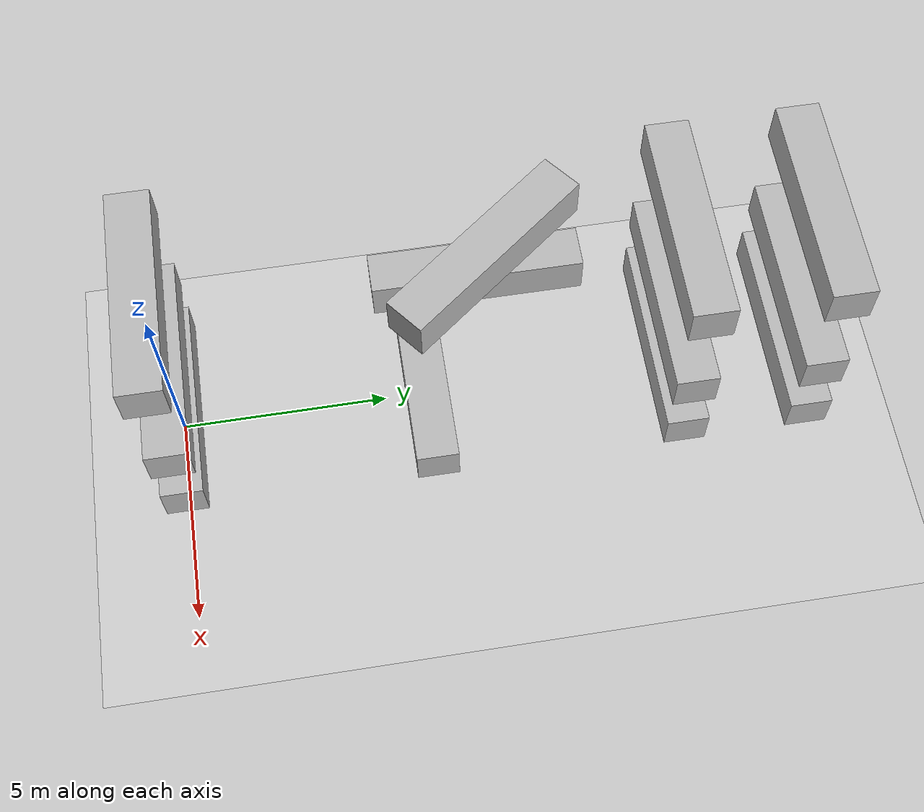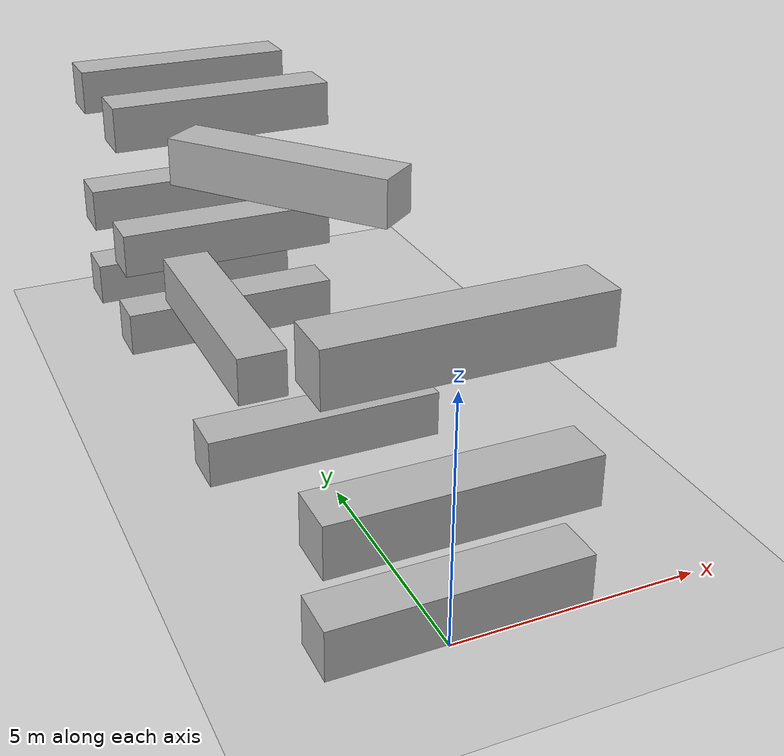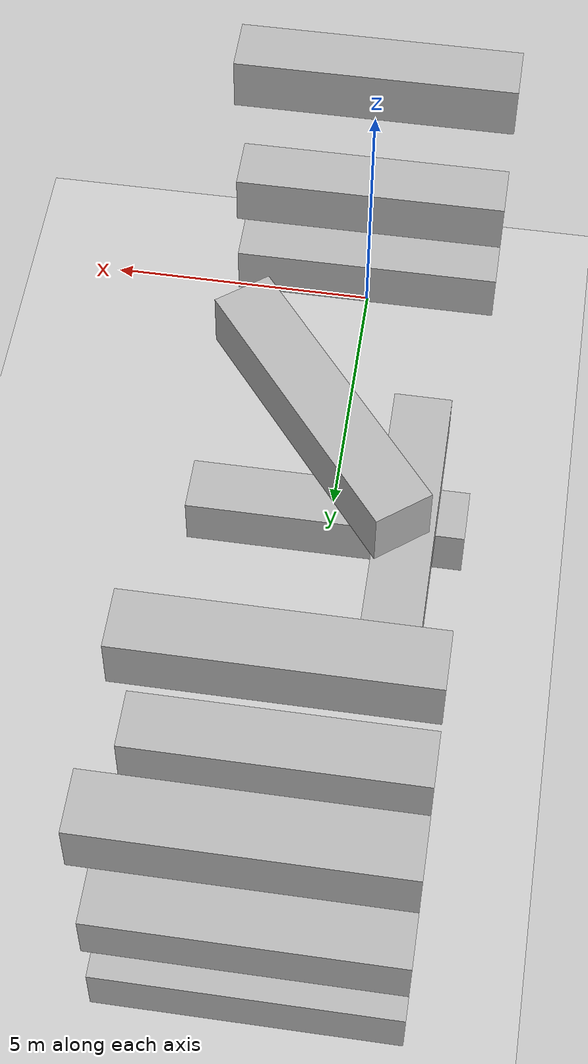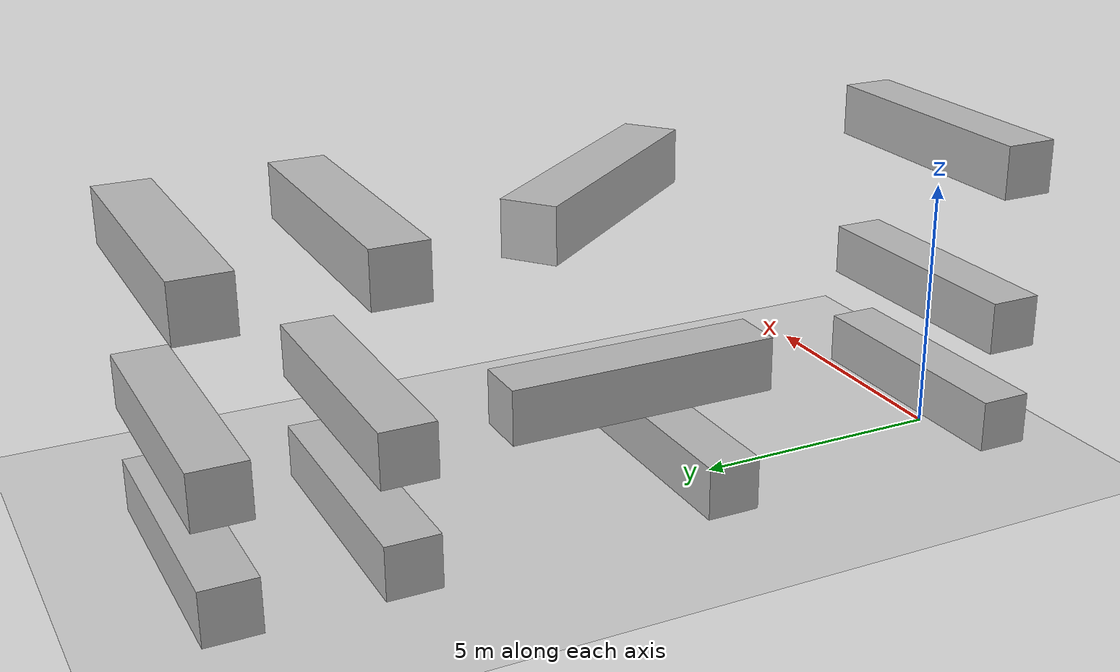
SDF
<?xml version="1.0" ?>
<sdf version="1.5">
  <world name="default">
    <include>
      <uri>model://ground_plane</uri>
    </include>
    <include>
      <uri>model://sun</uri>
    </include>

    <model name="all_collide">
      <self_collide>true</self_collide>
      <link name="link">
        <pose>0 0 1.0 0 0 0</pose>
        <inertial>
          <mass>1</mass>
          <inertia>
            <ixx>0.166667</ixx>
            <ixy>0</ixy>
            <ixz>0</ixz>
            <iyy>2.166667</iyy>
            <iyz>0</iyz>
            <izz>2.166667</izz>
          </inertia>
        </inertial>
        <collision name="collision">
          <geometry>
            <box>
              <size>5 1 1</size>
            </box>
          </geometry>
        </collision>
        <visual name="visual">
          <geometry>
            <box>
              <size>5 1 1</size>
            </box>
          </geometry>
        </visual>
      </link>

      <link name="link1">
        <pose>0 0 3.0 0 0 0</pose>
        <inertial>
          <mass>1</mass>
          <inertia>
            <ixx>0.166667</ixx>
            <ixy>0</ixy>
            <ixz>0</ixz>
            <iyy>2.166667</iyy>
            <iyz>0</iyz>
            <izz>2.166667</izz>
          </inertia>
        </inertial>
        <collision name="collision">
          <geometry>
            <box>
              <size>5 1 1</size>
            </box>
          </geometry>
        </collision>
        <visual name="visual">
          <geometry>
            <box>
              <size>5 1 1</size>
            </box>
          </geometry>
        </visual>
      </link>

      <link name="link2">
        <pose>0 0 6.0 0 0 0</pose>
        <inertial>
          <mass>1</mass>
          <inertia>
            <ixx>0.166667</ixx>
            <ixy>0</ixy>
            <ixz>0</ixz>
            <iyy>2.166667</iyy>
            <iyz>0</iyz>
            <izz>2.166667</izz>
          </inertia>
        </inertial>
        <collision name="collision">
          <geometry>
            <box>
              <size>5 1 1</size>
            </box>
          </geometry>
        </collision>
        <visual name="visual">
          <geometry>
            <box>
              <size>5 1 1</size>
            </box>
          </geometry>
        </visual>
      </link>
    </model>

    <!-- Demonstrate that link self_collide overrides model self_collide-->
    <model name="some_collide">
      <pose>0 6 0 0 0 0</pose>
      <self_collide>true</self_collide>
      <link name="link">
        <self_collide>false</self_collide>
        <pose>0 0 1.0 0 0 0</pose>
        <inertial>
          <mass>1</mass>
          <inertia>
            <ixx>0.166667</ixx>
            <ixy>0</ixy>
            <ixz>0</ixz>
            <iyy>2.166667</iyy>
            <iyz>0</iyz>
            <izz>2.166667</izz>
          </inertia>
        </inertial>
        <collision name="collision">
          <geometry>
            <box>
              <size>5 1 1</size>
            </box>
          </geometry>
        </collision>
        <visual name="visual">
          <geometry>
            <box>
              <size>5 1 1</size>
            </box>
          </geometry>
        </visual>
      </link>

      <link name="link1">
        <pose>-1.5 1.5 3.0 0 0 1.57</pose>
        <self_collide>false</self_collide>
        <inertial>
          <mass>1</mass>
          <inertia>
            <ixx>0.166667</ixx>
            <ixy>0</ixy>
            <ixz>0</ixz>
            <iyy>2.166667</iyy>
            <iyz>0</iyz>
            <izz>2.166667</izz>
          </inertia>
        </inertial>
        <collision name="collision">
          <geometry>
            <box>
              <size>5 1 1</size>
            </box>
          </geometry>
        </collision>
        <visual name="visual">
          <geometry>
            <box>
              <size>5 1 1</size>
            </box>
          </geometry>
        </visual>
      </link>

      <link name="link2">
        <pose>0 1.5 6.0 0 0 2.24</pose>
        <inertial>
          <mass>1</mass>
          <inertia>
            <ixx>0.166667</ixx>
            <ixy>0</ixy>
            <ixz>0</ixz>
            <iyy>2.166667</iyy>
            <iyz>0</iyz>
            <izz>2.166667</izz>
          </inertia>
        </inertial>
        <collision name="collision">
          <geometry>
            <box>
              <size>5 1 1</size>
            </box>
          </geometry>
        </collision>
        <visual name="visual">
          <geometry>
            <box>
              <size>5 1 1</size>
            </box>
          </geometry>
        </visual>
      </link>
    </model>

    <!-- Demonstrate backwards compatibility: default is no self-collisions-->
    <model name="no_collide">
      <pose>0 12 0 0 0 0</pose>
      <link name="link">
        <pose>0 0 1.0 0 0 0</pose>
        <inertial>
          <mass>1</mass>
          <inertia>
            <ixx>0.166667</ixx>
            <ixy>0</ixy>
            <ixz>0</ixz>
            <iyy>2.166667</iyy>
            <iyz>0</iyz>
            <izz>2.166667</izz>
          </inertia>
        </inertial>
        <collision name="collision">
          <geometry>
            <box>
              <size>5 1 1</size>
            </box>
          </geometry>
        </collision>
        <visual name="visual">
          <geometry>
            <box>
              <size>5 1 1</size>
            </box>
          </geometry>
        </visual>
      </link>

      <link name="link1">
        <pose>0 0 3.0 0 0 0</pose>
        <inertial>
          <mass>1</mass>
          <inertia>
            <ixx>0.166667</ixx>
            <ixy>0</ixy>
            <ixz>0</ixz>
            <iyy>2.166667</iyy>
            <iyz>0</iyz>
            <izz>2.166667</izz>
          </inertia>
        </inertial>
        <collision name="collision">
          <geometry>
            <box>
              <size>5 1 1</size>
            </box>
          </geometry>
        </collision>
        <visual name="visual">
          <geometry>
            <box>
              <size>5 1 1</size>
            </box>
          </geometry>
        </visual>
      </link>

      <link name="link2">
        <pose>0 0 6.0 0 0 0</pose>
        <inertial>
          <mass>1</mass>
          <inertia>
            <ixx>0.166667</ixx>
            <ixy>0</ixy>
            <ixz>0</ixz>
            <iyy>2.166667</iyy>
            <iyz>0</iyz>
            <izz>2.166667</izz>
          </inertia>
        </inertial>
        <collision name="collision">
          <geometry>
            <box>
              <size>5 1 1</size>
            </box>
          </geometry>
        </collision>
        <visual name="visual">
          <geometry>
            <box>
              <size>5 1 1</size>
            </box>
          </geometry>
        </visual>
      </link>
    </model>
    <!-- Demonstrate that self_collide=false produces same behavior as above-->
    <model name="explicit_no_collide">
      <self_collide>false</self_collide>
      <pose>0 15 0 0 0 0</pose>
      <link name="link">
        <pose>0 0 1.0 0 0 0</pose>
        <inertial>
          <mass>1</mass>
          <inertia>
            <ixx>0.166667</ixx>
            <ixy>0</ixy>
            <ixz>0</ixz>
            <iyy>2.166667</iyy>
            <iyz>0</iyz>
            <izz>2.166667</izz>
          </inertia>
        </inertial>
        <collision name="collision">
          <geometry>
            <box>
              <size>5 1 1</size>
            </box>
          </geometry>
        </collision>
        <visual name="visual">
          <geometry>
            <box>
              <size>5 1 1</size>
            </box>
          </geometry>
        </visual>
      </link>

      <link name="link1">
        <pose>0 0 3.0 0 0 0</pose>
        <inertial>
          <mass>1</mass>
          <inertia>
            <ixx>0.166667</ixx>
            <ixy>0</ixy>
            <ixz>0</ixz>
            <iyy>2.166667</iyy>
            <iyz>0</iyz>
            <izz>2.166667</izz>
          </inertia>
        </inertial>
        <collision name="collision">
          <geometry>
            <box>
              <size>5 1 1</size>
            </box>
          </geometry>
        </collision>
        <visual name="visual">
          <geometry>
            <box>
              <size>5 1 1</size>
            </box>
          </geometry>
        </visual>
      </link>

      <link name="link2">
        <pose>0 0 6.0 0 0 0</pose>
        <inertial>
          <mass>1</mass>
          <inertia>
            <ixx>0.166667</ixx>
            <ixy>0</ixy>
            <ixz>0</ixz>
            <iyy>2.166667</iyy>
            <iyz>0</iyz>
            <izz>2.166667</izz>
          </inertia>
        </inertial>
        <collision name="collision">
          <geometry>
            <box>
              <size>5 1 1</size>
            </box>
          </geometry>
        </collision>
        <visual name="visual">
          <geometry>
            <box>
              <size>5 1 1</size>
            </box>
          </geometry>
        </visual>
      </link>
    </model>

  </world>
</sdf>
